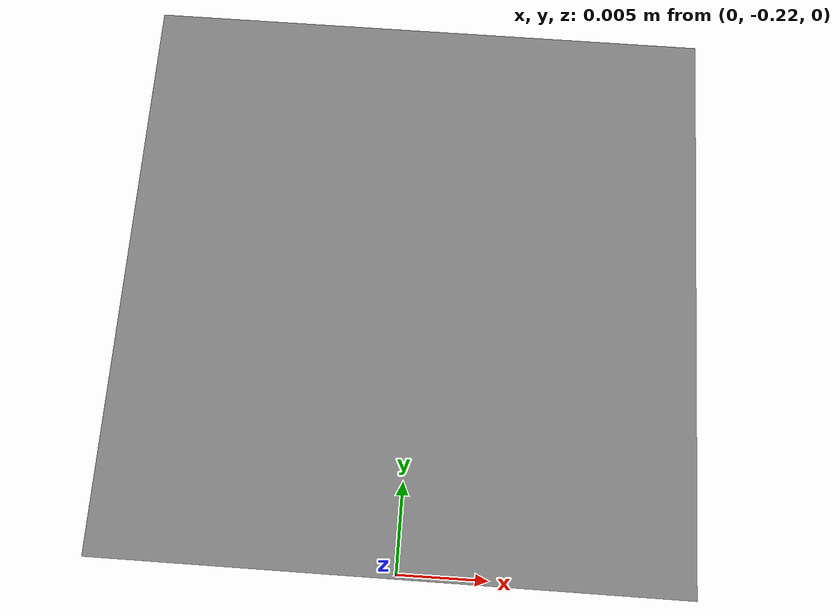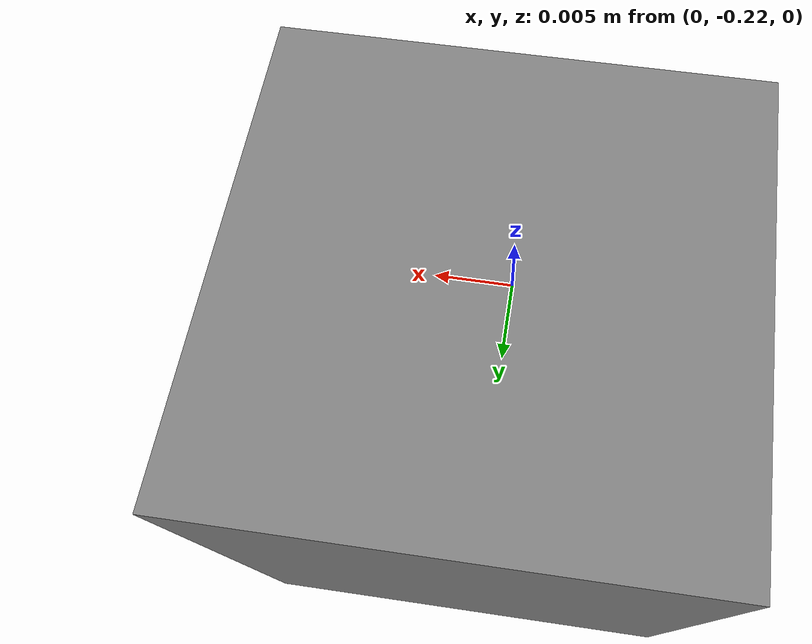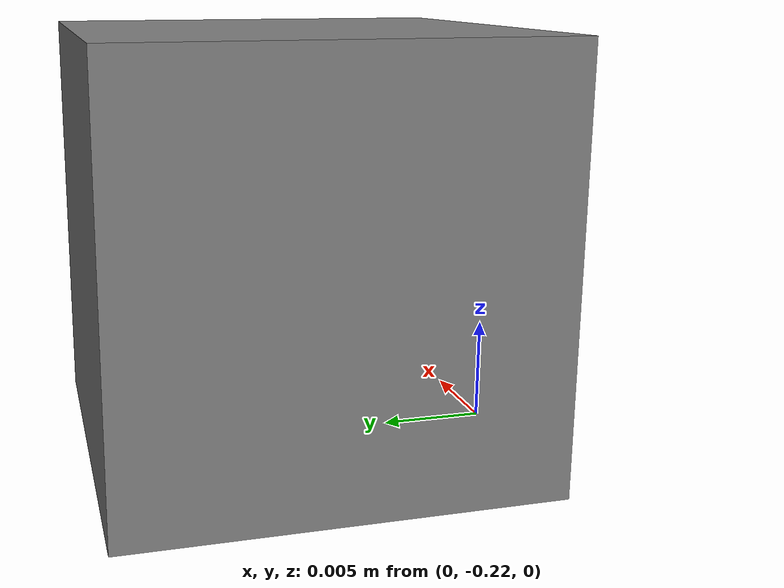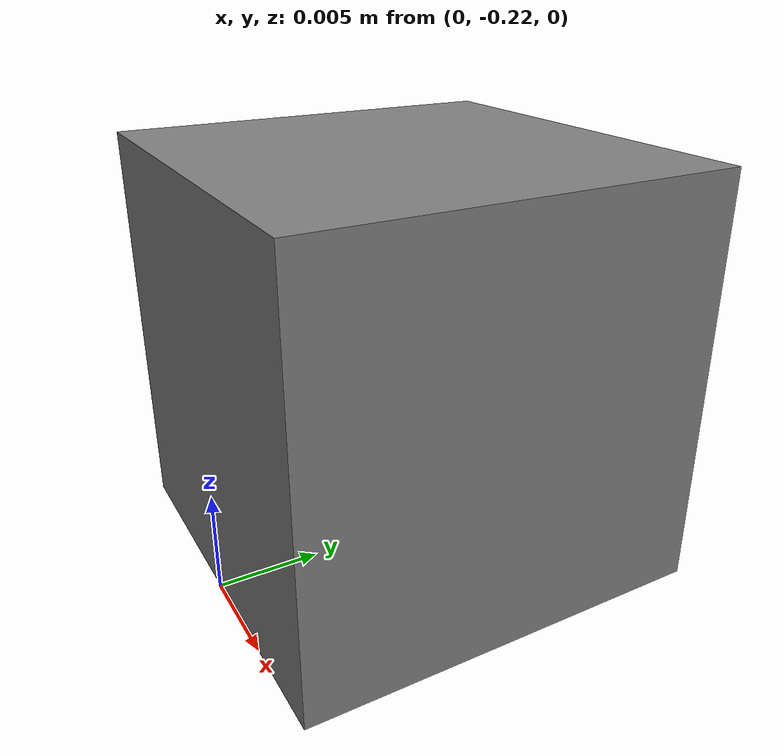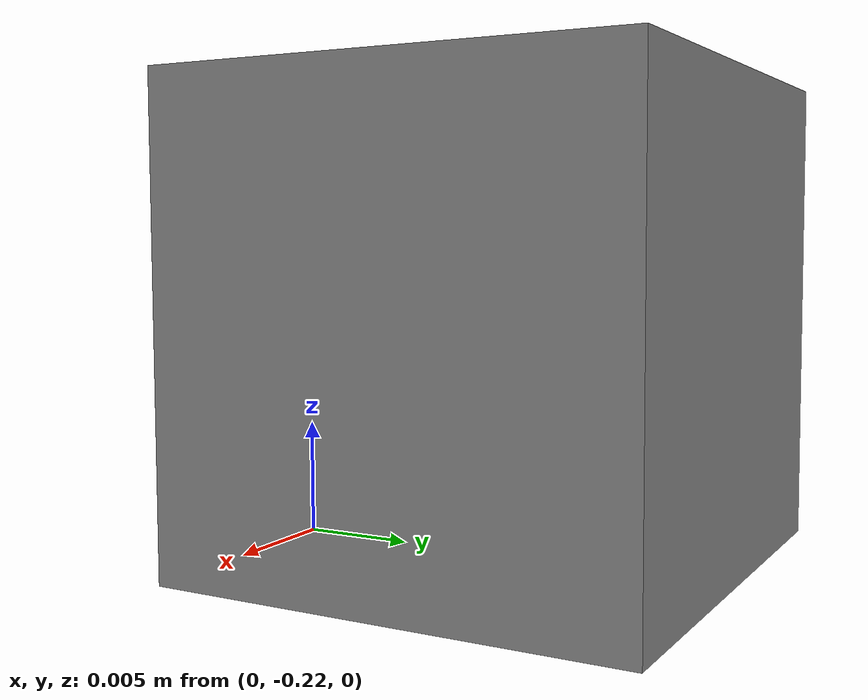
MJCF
<mujoco>
	<worldbody>
		<body name="box" pos="0.0 -0.21 0.01">
			<geom type="box" size="0.01 0.01 0.01"/>
			<!-- Comment out to fix the object -->
		</body>

	</worldbody>

</mujoco>
